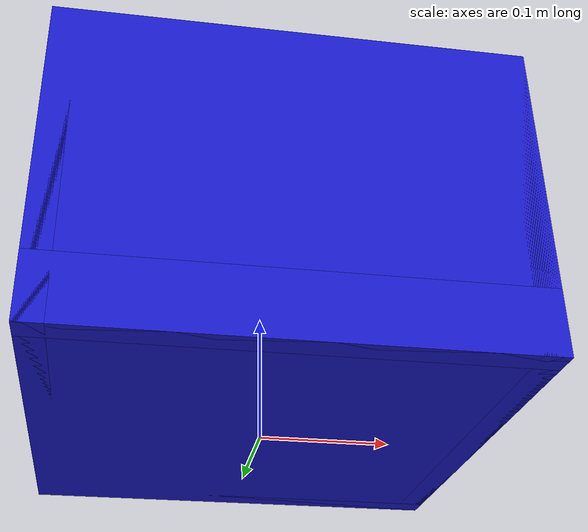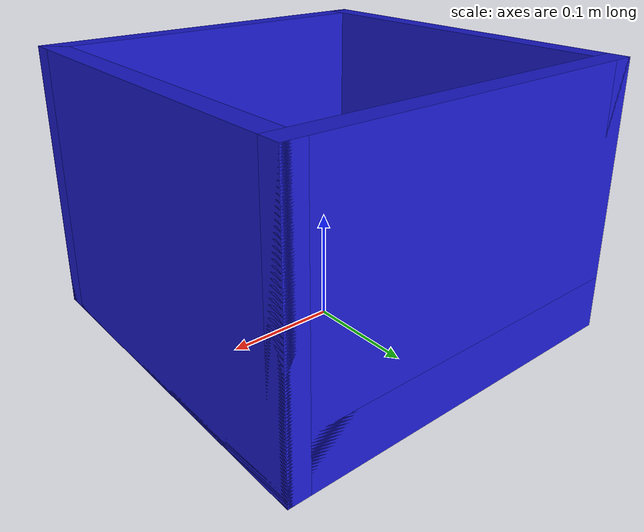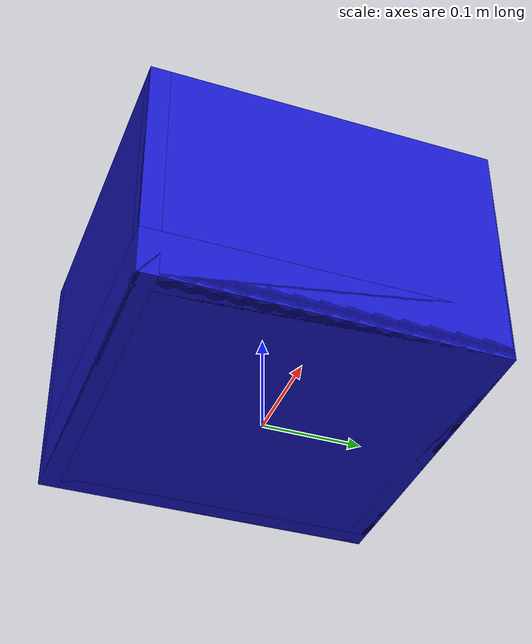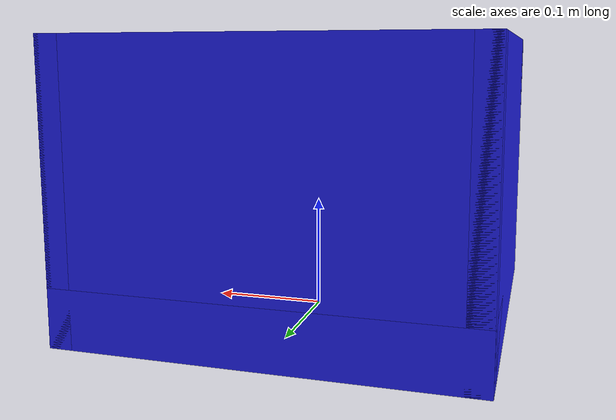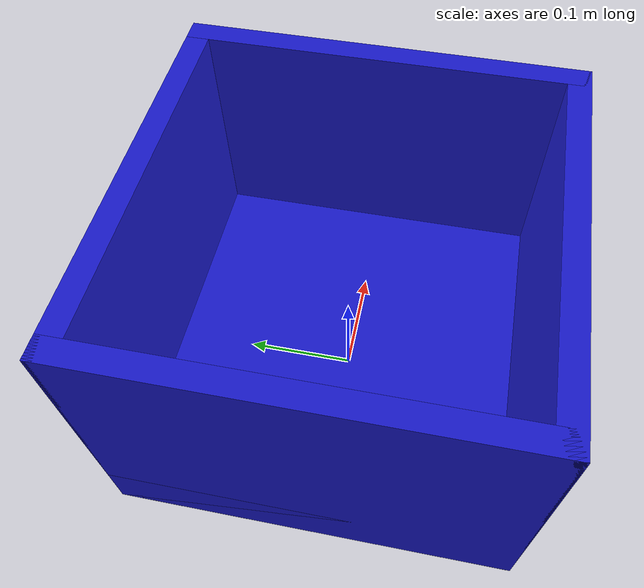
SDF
<?xml version="1.0"?>
<sdf version="1.10">

  <model name="blue_bin">

    <static>true</static>

    <link name="bin_link">

      <!-- Bottom -->
      <collision name="bottom_collision">
        <pose>0 0 0.025 0 0 0</pose>
        <geometry>
          <box>
            <size>0.35 0.35 0.05</size>
          </box>
        </geometry>
      </collision>

      <visual name="bottom_visual">
        <pose>0 0 0.025 0 0 0</pose>
        <geometry>
          <box>
            <size>0.35 0.35 0.05</size>
          </box>
        </geometry>

        <material>
          <ambient>0.1 0.1 0.8 1</ambient>
          <diffuse>0.1 0.1 0.8 1</diffuse>
        </material>
      </visual>

      <!-- Left wall -->
      <collision name="left_wall_collision">
        <pose>0 0.165 0.125 0 0 0</pose>
        <geometry>
          <box>
            <size>0.35 0.02 0.25</size>
          </box>
        </geometry>
      </collision>

      <visual name="left_wall_visual">
        <pose>0 0.165 0.125 0 0 0</pose>
        <geometry>
          <box>
            <size>0.35 0.02 0.25</size>
          </box>
        </geometry>

        <material>
          <ambient>0.1 0.1 0.8 1</ambient>
          <diffuse>0.1 0.1 0.8 1</diffuse>
        </material>
      </visual>

      <!-- Right wall -->
      <collision name="right_wall_collision">
        <pose>0 -0.165 0.125 0 0 0</pose>
        <geometry>
          <box>
            <size>0.35 0.02 0.25</size>
          </box>
        </geometry>
      </collision>

      <visual name="right_wall_visual">
        <pose>0 -0.165 0.125 0 0 0</pose>
        <geometry>
          <box>
            <size>0.35 0.02 0.25</size>
          </box>
        </geometry>

        <material>
          <ambient>0.1 0.1 0.8 1</ambient>
          <diffuse>0.1 0.1 0.8 1</diffuse>
        </material>
      </visual>

      <!-- Front wall -->
      <collision name="front_wall_collision">
        <pose>0.165 0 0.125 0 0 0</pose>
        <geometry>
          <box>
            <size>0.02 0.35 0.25</size>
          </box>
        </geometry>
      </collision>

      <visual name="front_wall_visual">
        <pose>0.165 0 0.125 0 0 0</pose>
        <geometry>
          <box>
            <size>0.02 0.35 0.25</size>
          </box>
        </geometry>

        <material>
          <ambient>0.1 0.1 0.8 1</ambient>
          <diffuse>0.1 0.1 0.8 1</diffuse>
        </material>
      </visual>

      <!-- Back wall -->
      <collision name="back_wall_collision">
        <pose>-0.165 0 0.125 0 0 0</pose>
        <geometry>
          <box>
            <size>0.02 0.35 0.25</size>
          </box>
        </geometry>
      </collision>

      <visual name="back_wall_visual">
        <pose>-0.165 0 0.125 0 0 0</pose>
        <geometry>
          <box>
            <size>0.02 0.35 0.25</size>
          </box>
        </geometry>

        <material>
          <ambient>0.1 0.1 0.8 1</ambient>
          <diffuse>0.1 0.1 0.8 1</diffuse>
        </material>
      </visual>

    </link>

  </model>

</sdf>
